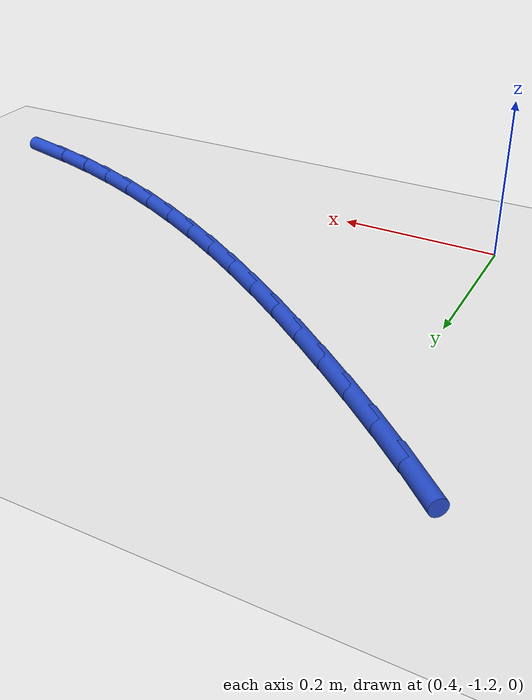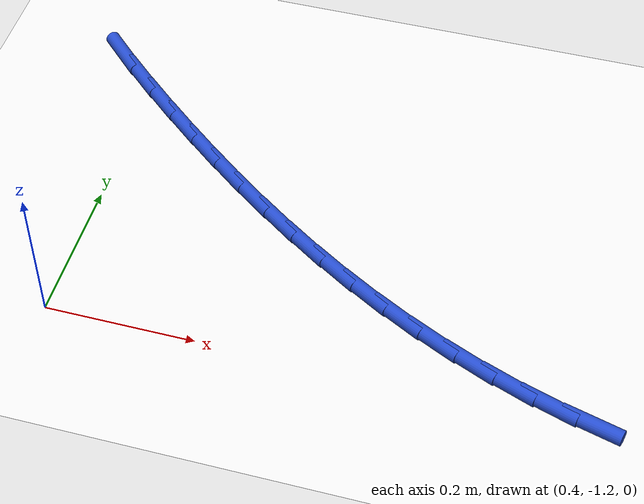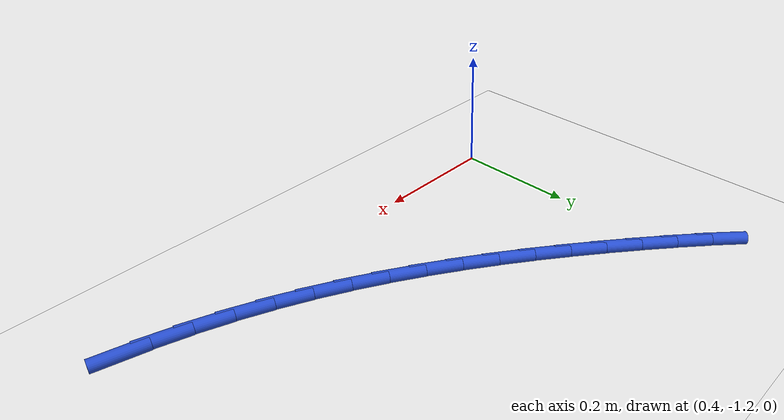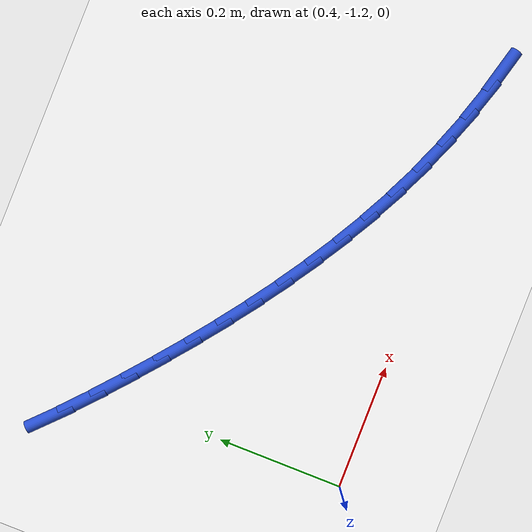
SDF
<sdf version="1.6">
 <world name="default">
  <model name="ground_plane">
   <static>1</static>
   <link name="link">
    <collision name="collision">
     <geometry><plane><normal>0 0 1</normal><size>100 100</size></plane></geometry>
     <surface><friction><ode><mu>100</mu><mu2>50</mu2></ode></friction></surface>
    </collision>
    <visual name="visual">
     <cast_shadows>0</cast_shadows>
     <geometry><plane><normal>0 0 1</normal><size>100 100</size></plane></geometry>
     <material>
      <script><uri>file://media/materials/scripts/gazebo.material</uri><name>Gazebo/WhiteGlow</name></script>
     </material>
    </visual>
   </link>
  </model>
  <model name="line">
   <link name="link_99">
    <pose>1.0960159794804363 -1.1986634730846535 0.01 0 1.57 -0.2582428709761685</pose>
    <collision name="collision">
     <geometry><cylinder><radius>0.01</radius><length>0.08</length></cylinder></geometry>
    </collision>
    <visual name="visual">
     <material>
      <script><name>Gazebo/Blue</name><uri>file://media/materials/scripts/gazebo.material</uri></script>
     </material>
     <geometry><cylinder><radius>0.01</radius><length>0.08</length></cylinder></geometry>
    </visual>
   </link>
   <link name="link_100">
    <pose>1.0418872805934016 -1.1843658675570883 0.01 0 1.57 -0.3094304267882255</pose>
    <collision name="collision">
     <geometry><cylinder><radius>0.01</radius><length>0.08</length></cylinder></geometry>
    </collision>
    <visual name="visual">
     <material>
      <script><name>Gazebo/Blue</name><uri>file://media/materials/scripts/gazebo.material</uri></script>
     </material>
     <geometry><cylinder><radius>0.01</radius><length>0.08</length></cylinder></geometry>
    </visual>
   </link>
   <link name="link_101">
    <pose>0.9887865301856832 -1.1673895787530943 0.01 0 1.57 -0.35803741177199544</pose>
    <collision name="collision">
     <geometry><cylinder><radius>0.01</radius><length>0.08</length></cylinder></geometry>
    </collision>
    <visual name="visual">
     <material>
      <script><name>Gazebo/Blue</name><uri>file://media/materials/scripts/gazebo.material</uri></script>
     </material>
     <geometry><cylinder><radius>0.01</radius><length>0.08</length></cylinder></geometry>
    </visual>
   </link>
   <link name="link_102">
    <pose>0.9367156855449287 -1.1479065506959383 0.01 0 1.57 -0.4038735270378794</pose>
    <collision name="collision">
     <geometry><cylinder><radius>0.01</radius><length>0.08</length></cylinder></geometry>
    </collision>
    <visual name="visual">
     <material>
      <script><name>Gazebo/Blue</name><uri>file://media/materials/scripts/gazebo.material</uri></script>
     </material>
     <geometry><cylinder><radius>0.01</radius><length>0.08</length></cylinder></geometry>
    </visual>
   </link>
   <link name="link_103">
    <pose>0.8856395081441626 -1.12607829497393 0.01 0 1.57 -0.4468050857946184</pose>
    <collision name="collision">
     <geometry><cylinder><radius>0.01</radius><length>0.08</length></cylinder></geometry>
    </collision>
    <visual name="visual">
     <material>
      <script><name>Gazebo/Blue</name><uri>file://media/materials/scripts/gazebo.material</uri></script>
     </material>
     <geometry><cylinder><radius>0.01</radius><length>0.08</length></cylinder></geometry>
    </visual>
   </link>
   <link name="link_104">
    <pose>0.8355227594564069 -1.1020663231753791 0.01 0 1.57 -0.48675722515542186</pose>
    <collision name="collision">
     <geometry><cylinder><radius>0.01</radius><length>0.08</length></cylinder></geometry>
    </collision>
    <visual name="visual">
     <material>
      <script><name>Gazebo/Blue</name><uri>file://media/materials/scripts/gazebo.material</uri></script>
     </material>
     <geometry><cylinder><radius>0.01</radius><length>0.08</length></cylinder></geometry>
    </visual>
   </link>
   <link name="link_105">
    <pose>0.786330200954684 -1.0760321468885943 0.01 0 1.57 -0.523703866547899</pose>
    <collision name="collision">
     <geometry><cylinder><radius>0.01</radius><length>0.08</length></cylinder></geometry>
    </collision>
    <visual name="visual">
     <material>
      <script><name>Gazebo/Blue</name><uri>file://media/materials/scripts/gazebo.material</uri></script>
     </material>
     <geometry><cylinder><radius>0.01</radius><length>0.08</length></cylinder></geometry>
    </visual>
   </link>
   <link name="link_106">
    <pose>0.7380265941120173 -1.0481372777018858 0.01 0 1.57 -0.5576571370875417</pose>
    <collision name="collision">
     <geometry><cylinder><radius>0.01</radius><length>0.08</length></cylinder></geometry>
    </collision>
    <visual name="visual">
     <material>
      <script><name>Gazebo/Blue</name><uri>file://media/materials/scripts/gazebo.material</uri></script>
     </material>
     <geometry><cylinder><radius>0.01</radius><length>0.08</length></cylinder></geometry>
    </visual>
   </link>
   <link name="link_107">
    <pose>0.6905767004014284 -1.018543227203562 0.01 0 1.57 -0.5886571541112169</pose>
    <collision name="collision">
     <geometry><cylinder><radius>0.01</radius><length>0.08</length></cylinder></geometry>
    </collision>
    <visual name="visual">
     <material>
      <script><name>Gazebo/Blue</name><uri>file://media/materials/scripts/gazebo.material</uri></script>
     </material>
     <geometry><cylinder><radius>0.01</radius><length>0.08</length></cylinder></geometry>
    </visual>
   </link>
   <link name="link_108">
    <pose>0.6439452812959416 -0.9874115069819335 0.01 0 1.57 -0.6167627411135008</pose>
    <collision name="collision">
     <geometry><cylinder><radius>0.01</radius><length>0.08</length></cylinder></geometry>
    </collision>
    <visual name="visual">
     <material>
      <script><name>Gazebo/Blue</name><uri>file://media/materials/scripts/gazebo.material</uri></script>
     </material>
     <geometry><cylinder><radius>0.01</radius><length>0.08</length></cylinder></geometry>
    </visual>
   </link>
   <link name="link_109">
    <pose>0.5980970982685793 -0.9549036286253094 0.01 0 1.57 -0.6420433576883466</pose>
    <collision name="collision">
     <geometry><cylinder><radius>0.01</radius><length>0.08</length></cylinder></geometry>
    </collision>
    <visual name="visual">
     <material>
      <script><name>Gazebo/Blue</name><uri>file://media/materials/scripts/gazebo.material</uri></script>
     </material>
     <geometry><cylinder><radius>0.01</radius><length>0.08</length></cylinder></geometry>
    </visual>
   </link>
   <link name="link_110">
    <pose>0.5529969127923632 -0.9211811037219989 0.01 0 1.57 -0.6645723119391451</pose>
    <collision name="collision">
     <geometry><cylinder><radius>0.01</radius><length>0.08</length></cylinder></geometry>
    </collision>
    <visual name="visual">
     <material>
      <script><name>Gazebo/Blue</name><uri>file://media/materials/scripts/gazebo.material</uri></script>
     </material>
     <geometry><cylinder><radius>0.01</radius><length>0.08</length></cylinder></geometry>
    </visual>
   </link>
   <link name="link_111">
    <pose>0.5086094863403174 -0.8864054438603116 0.01 0 1.57 -0.684421181577326</pose>
    <collision name="collision">
     <geometry><cylinder><radius>0.01</radius><length>0.08</length></cylinder></geometry>
    </collision>
    <visual name="visual">
     <material>
      <script><name>Gazebo/Blue</name><uri>file://media/materials/scripts/gazebo.material</uri></script>
     </material>
     <geometry><cylinder><radius>0.01</radius><length>0.08</length></cylinder></geometry>
    </visual>
   </link>
   <link name="link_112">
    <pose>0.46489958038546436 -0.8507381606285571 0.01 0 1.57 -0.7016735939860712</pose>
    <collision name="collision">
     <geometry><cylinder><radius>0.01</radius><length>0.08</length></cylinder></geometry>
    </collision>
    <visual name="visual">
     <material>
      <script><name>Gazebo/Blue</name><uri>file://media/materials/scripts/gazebo.material</uri></script>
     </material>
     <geometry><cylinder><radius>0.01</radius><length>0.08</length></cylinder></geometry>
    </visual>
   </link>
   <link name="link_113">
    <pose>0.4218326382488355 -0.8143399903583614 0.01 0 1.57 -0.7189491095731134</pose>
    <collision name="collision">
     <geometry><cylinder><radius>0.01</radius><length>0.08</length></cylinder></geometry>
    </collision>
    <visual name="visual">
     <material>
      <script><name>Gazebo/Blue</name><uri>file://media/materials/scripts/gazebo.material</uri></script>
     </material>
     <geometry><cylinder><radius>0.01</radius><length>0.08</length></cylinder></geometry>
    </visual>
   </link>
   <link name="link_114">
    <pose>0.3794694351769682 -0.777263277611598 0.01 0 1.57 -0.7415018865408727</pose>
    <collision name="collision">
     <geometry><cylinder><radius>0.01</radius><length>0.08</length></cylinder></geometry>
    </collision>
    <visual name="visual">
     <material>
      <script><name>Gazebo/Blue</name><uri>file://media/materials/scripts/gazebo.material</uri></script>
     </material>
     <geometry><cylinder><radius>0.01</radius><length>0.08</length></cylinder></geometry>
    </visual>
   </link>
   <link name="link_115">
    <pose>0.33806323054333137 -0.7393415137689315 0.01 0 1.57 -0.7700693762790417</pose>
    <collision name="collision">
     <geometry><cylinder><radius>0.01</radius><length>0.08</length></cylinder></geometry>
    </collision>
    <visual name="visual">
     <material>
      <script><name>Gazebo/Blue</name><uri>file://media/materials/scripts/gazebo.material</uri></script>
     </material>
     <geometry><cylinder><radius>0.01</radius><length>0.08</length></cylinder></geometry>
    </visual>
   </link>
  </model>
 </world>
</sdf>
